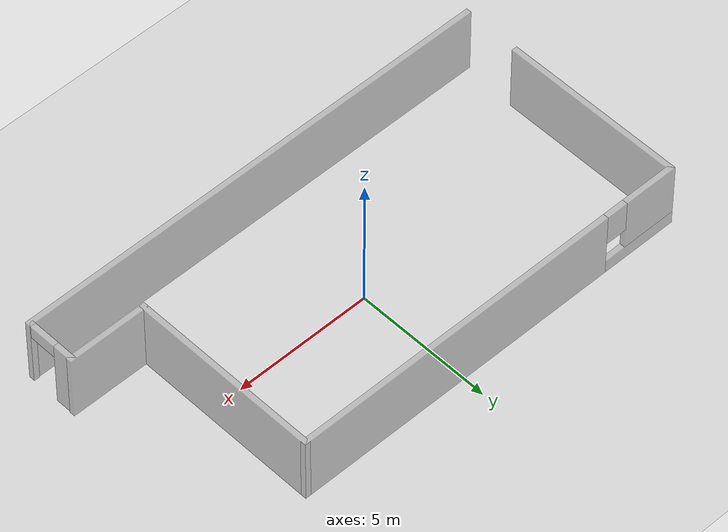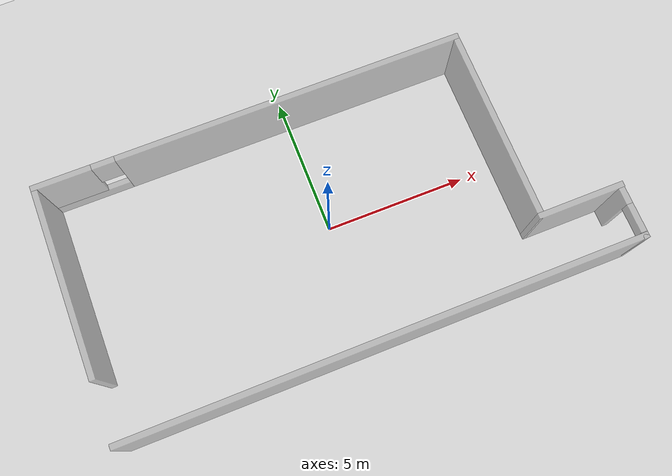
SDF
<sdf version="1.4">
 <world name="default">
  <include><uri>model://sun</uri></include>
  <include><uri>model://ground_plane</uri></include>
  <include><uri>model://iri_lab_robotica_mobil</uri></include>
 </world>
</sdf>

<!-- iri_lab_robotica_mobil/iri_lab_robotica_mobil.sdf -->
<sdf version='1.4'>
  <model name='iri_lab_robotica_mobil'>
    <link name='Wall_0'>
      <collision name='Wall_0_Collision'>
        <geometry>
          <box>
            <size>17.7711 0.2 2.5</size>
          </box>
        </geometry>
        <pose>0 0 1.25 0 -0 0</pose>
      </collision>
      <visual name='Wall_0_Visual'>
        <transparency>0.5</transparency>
        <pose>0 0 1.25 0 -0 0</pose>
        <geometry>
          <box>
            <size>17.7711 0.2 2.5</size>
          </box>
        </geometry>
        <material>
          <script>
            <uri>file://media/materials/scripts/gazebo.material</uri>
            <name>Gazebo/Grey</name>
          </script>
        </material>
      </visual>
      <velocity_decay>
        <linear>0</linear>
        <angular>0</angular>
      </velocity_decay>
      <pose>0.214465 -4.5 0 0 -0 0</pose>
    </link>
    <link name='Wall_10'>
      <collision name='Wall_10_Collision'>
        <geometry>
          <box>
            <size>6.65 0.2 2.5</size>
          </box>
        </geometry>
        <pose>0 0 1.25 0 -0 0</pose>
      </collision>
      <visual name='Wall_10_Visual'>
        <transparency>0.5</transparency>
        <pose>0 0 1.25 0 -0 0</pose>
        <geometry>
          <box>
            <size>6.65 0.2 2.5</size>
          </box>
        </geometry>
        <material>
          <script>
            <uri>file://media/materials/scripts/gazebo.material</uri>
            <name>Gazebo/Grey</name>
          </script>
        </material>
      </visual>
      <velocity_decay>
        <linear>0</linear>
        <angular>0</angular>
      </velocity_decay>
      <pose>-8.576 0.877 0 0 0 -1.5708</pose>
    </link>
    <link name='Wall_4'>
      <pose>9 -3.6 0 0 -0 1.5708</pose>
      <visual name='Wall_4_Visual_0'>
        <transparency>0.5</transparency>
        <pose>-0.889331 0 1.25 0 -0 0</pose>
        <geometry>
          <box>
            <size>0.221338 0.2 2.5</size>
          </box>
        </geometry>
        <material>
          <script>
            <uri>file://media/materials/scripts/gazebo.material</uri>
            <name>Gazebo/Grey</name>
          </script>
        </material>
      </visual>
      <collision name='Wall_4_Collision_0'>
        <geometry>
          <box>
            <size>0.221338 0.2 2.5</size>
          </box>
        </geometry>
        <pose>-0.889331 0 1.25 0 -0 0</pose>
      </collision>
      <visual name='Wall_4_Visual_1'>
        <transparency>0.5</transparency>
        <pose>0.610669 0 1.25 0 -0 0</pose>
        <geometry>
          <box>
            <size>0.778662 0.2 2.5</size>
          </box>
        </geometry>
        <material>
          <script>
            <uri>file://media/materials/scripts/gazebo.material</uri>
            <name>Gazebo/Grey</name>
          </script>
        </material>
      </visual>
      <collision name='Wall_4_Collision_1'>
        <geometry>
          <box>
            <size>0.778662 0.2 2.5</size>
          </box>
        </geometry>
        <pose>0.610669 0 1.25 0 -0 0</pose>
      </collision>
      <visual name='Wall_4_Visual_2'>
        <transparency>0.5</transparency>
        <pose>-0.278662 0 2.25 0 -0 0</pose>
        <geometry>
          <box>
            <size>1 0.2 0.5</size>
          </box>
        </geometry>
        <material>
          <script>
            <uri>file://media/materials/scripts/gazebo.material</uri>
            <name>Gazebo/Grey</name>
          </script>
        </material>
      </visual>
      <collision name='Wall_4_Collision_2'>
        <geometry>
          <box>
            <size>1 0.2 0.5</size>
          </box>
        </geometry>
        <pose>-0.278662 0 2.25 0 -0 0</pose>
      </collision>
    </link>
    <link name='Wall_7'>
      <collision name='Wall_7_Collision'>
        <geometry>
          <box>
            <size>3.00017 0.2 2.5</size>
          </box>
        </geometry>
        <pose>0 0 1.25 0 -0 0</pose>
      </collision>
      <visual name='Wall_7_Visual'>
        <transparency>0.5</transparency>
        <pose>0 0 1.25 0 -0 0</pose>
        <geometry>
          <box>
            <size>3.00017 0.2 2.5</size>
          </box>
        </geometry>
        <material>
          <script>
            <uri>file://media/materials/scripts/gazebo.material</uri>
            <name>Gazebo/Grey</name>
          </script>
        </material>
      </visual>
      <velocity_decay>
        <linear>0</linear>
        <angular>0</angular>
      </velocity_decay>
      <pose>7.62408 -2.6982 0 0 -0 3.14145</pose>
    </link>
    <link name='Wall_8'>
      <collision name='Wall_8_Collision'>
        <geometry>
          <box>
            <size>7 0.2 2.5</size>
          </box>
        </geometry>
        <pose>0 0 1.25 0 -0 0</pose>
      </collision>
      <visual name='Wall_8_Visual'>
        <transparency>0.5</transparency>
        <pose>0 0 1.25 0 -0 0</pose>
        <geometry>
          <box>
            <size>7 0.2 2.5</size>
          </box>
        </geometry>
        <material>
          <script>
            <uri>file://media/materials/scripts/gazebo.material</uri>
            <name>Gazebo/Grey</name>
          </script>
        </material>
      </visual>
      <velocity_decay>
        <linear>0</linear>
        <angular>0</angular>
      </velocity_decay>
      <pose>6.224 0.702 0 0 -0 1.5708</pose>
    </link>
    <link name='Wall_9'>
      <pose>-1.176 4.102 0 0 -0 3.14159</pose>
      <visual name='Wall_9_Visual_0'>
        <transparency>0.5</transparency>
        <pose>-1.41341 0 1.25 0 -0 0</pose>
        <geometry>
          <box>
            <size>12.1732 0.2 2.5</size>
          </box>
        </geometry>
        <material>
          <script>
            <uri>file://media/materials/scripts/gazebo.material</uri>
            <name>Gazebo/Grey</name>
          </script>
        </material>
      </visual>
      <collision name='Wall_9_Collision_0'>
        <geometry>
          <box>
            <size>12.1732 0.2 2.5</size>
          </box>
        </geometry>
        <pose>-1.41341 0 1.25 0 -0 0</pose>
      </collision>
      <visual name='Wall_9_Visual_1'>
        <transparency>0.5</transparency>
        <pose>6.08659 0 0.25 0 -0 0</pose>
        <geometry>
          <box>
            <size>2.82682 0.2 0.5</size>
          </box>
        </geometry>
        <material>
          <script>
            <uri>file://media/materials/scripts/gazebo.material</uri>
            <name>Gazebo/Grey</name>
          </script>
        </material>
      </visual>
      <collision name='Wall_9_Collision_1'>
        <geometry>
          <box>
            <size>2.82682 0.2 0.5</size>
          </box>
        </geometry>
        <pose>6.08659 0 0.25 0 -0 0</pose>
      </collision>
      <visual name='Wall_9_Visual_2'>
        <transparency>0.5</transparency>
        <pose>6.48659 0 1.5 0 -0 0</pose>
        <geometry>
          <box>
            <size>2.02683 0.2 2</size>
          </box>
        </geometry>
        <material>
          <script>
            <uri>file://media/materials/scripts/gazebo.material</uri>
            <name>Gazebo/Grey</name>
          </script>
        </material>
      </visual>
      <collision name='Wall_9_Collision_2'>
        <geometry>
          <box>
            <size>2.02683 0.2 2</size>
          </box>
        </geometry>
        <pose>6.48659 0 1.5 0 -0 0</pose>
      </collision>
      <visual name='Wall_9_Visual_3'>
        <transparency>0.5</transparency>
        <pose>5.07317 0 1.9 0 -0 0</pose>
        <geometry>
          <box>
            <size>0.8 0.2 1.2</size>
          </box>
        </geometry>
        <material>
          <script>
            <uri>file://media/materials/scripts/gazebo.material</uri>
            <name>Gazebo/Grey</name>
          </script>
        </material>
      </visual>
      <collision name='Wall_9_Collision_3'>
        <geometry>
          <box>
            <size>0.8 0.2 1.2</size>
          </box>
        </geometry>
        <pose>5.07317 0 1.9 0 -0 0</pose>
      </collision>
    </link>
    <static>1</static>
  </model>
</sdf>
